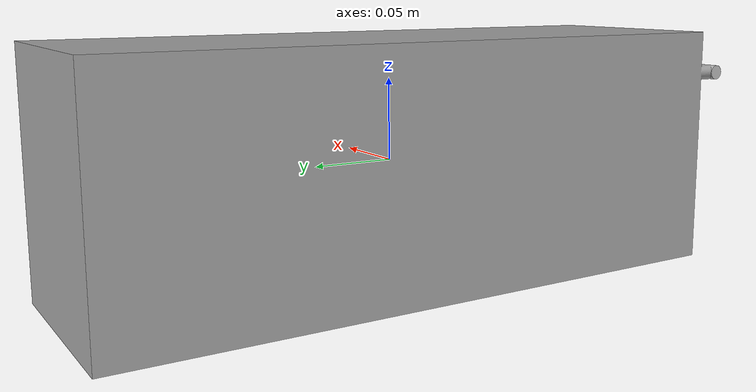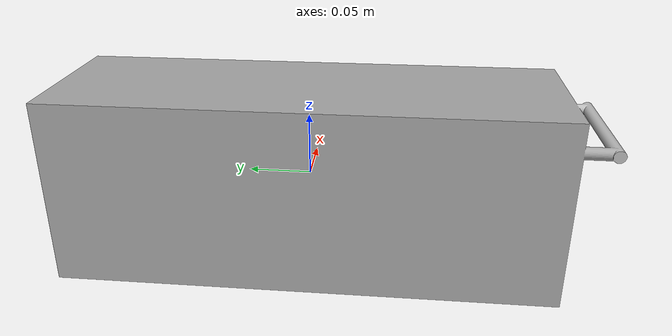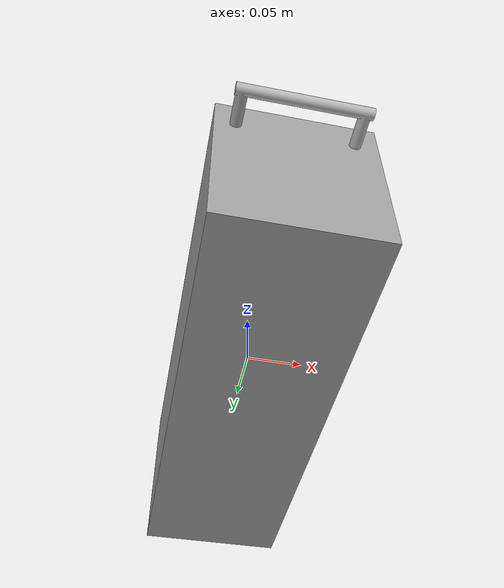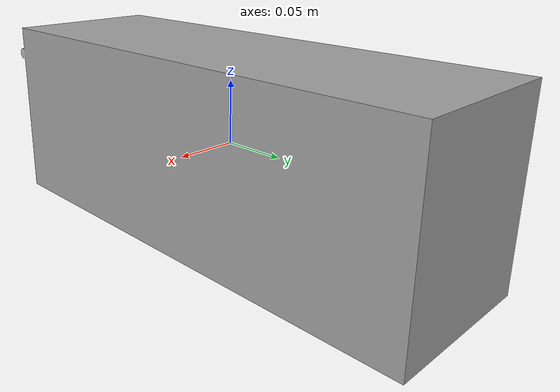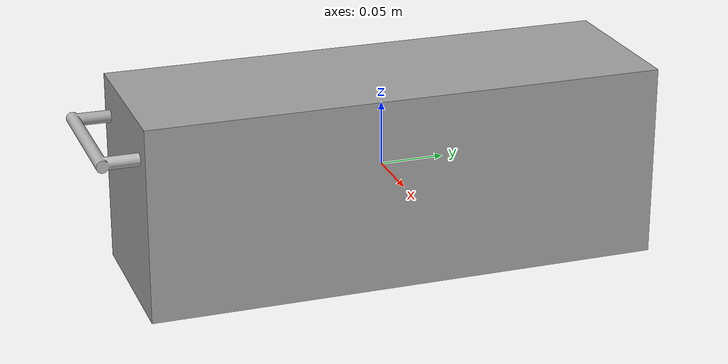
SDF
<sdf version='1.4'>
  <model name='blackbox'>
    <link name='link'>
      <pose>0 0 0 0 -0 0</pose>
      <inertial>
        <pose>0 0 0 0 -0 0</pose>
        <mass>4</mass>
        <inertia>
          <ixx>1</ixx>
          <ixy>0</ixy>
          <ixz>0</ixz>
          <iyy>1</iyy>
          <iyz>0</iyz>
          <izz>1</izz>
        </inertia>
      </inertial>
      <collision name='link_collision'>
        <pose>0 0 0 0 -0 0</pose>
        <geometry>
          <mesh>
            <scale>1 1 1</scale>
            <uri>file:///home/lar1/Desktop/catkin_ws_sub/src/freefloating_gazebo_demo/objects/blackbox_uib_trimesh.dae</uri>
          </mesh>
        </geometry>
      </collision>
      <visual name='link_visual'>
        <pose>0 0 0 0 -0 0</pose>
        <geometry>
          <mesh>
            <scale>1 1 1</scale>
            <uri>file:///home/lar1/Desktop/catkin_ws_sub/src/freefloating_gazebo_demo/objects/blackbox_uib_trimesh.dae</uri>
          </mesh>
        </geometry>
      </visual>
      <velocity_decay>
        <linear>0</linear>
        <angular>0</angular>
      </velocity_decay>
    </link>
  </model>
</sdf>
